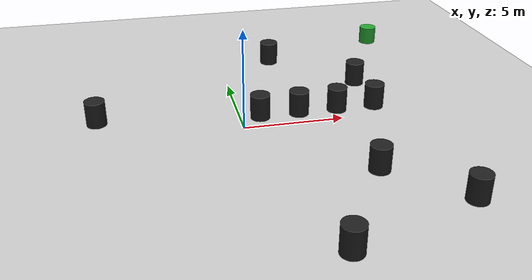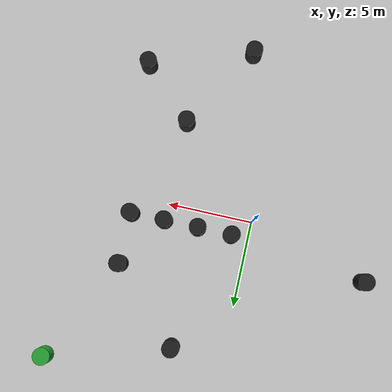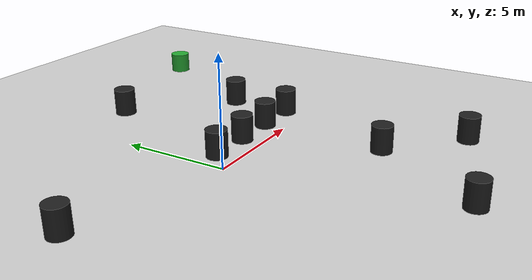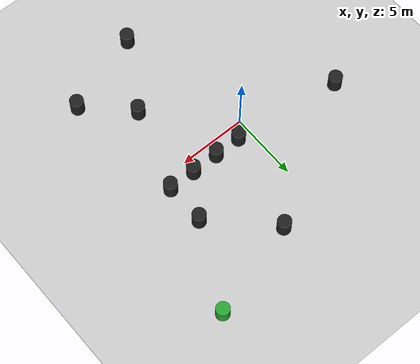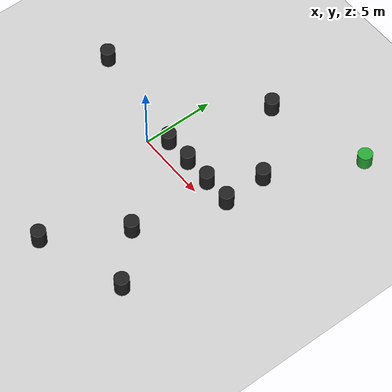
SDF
<?xml version="1.0" ?>
<sdf version="1.4">
  <world name="default">
    <!-- A global light source -->
    <include>
      <uri>model://sun</uri>
    </include>
    <!-- A ground plane -->
    <include>
      <uri>model://ground_plane</uri>
    </include>
    <!-- Own physics settings to speed up simulation -->
    <physics type='ode'>
      <max_step_size>0.01</max_step_size>
      <gravity>0 0 -9.8</gravity>
    </physics>

  		<model name='obs0'>
			<pose>1 1 0.5 0 -0 0</pose>
			<link name='link'>
				<inertial>
					<mass>1.0</mass>
				</inertial>

				<collision name='collision'>
					<geometry>
						<cylinder>
							<radius>0.5</radius>
							<length>1.5</length>
            			</cylinder>
					</geometry>
				</collision>

				<visual name='visual'>
					<geometry>
						<cylinder>
							<radius>0.5</radius>
							<length>1.5</length>
            			</cylinder>
					</geometry>
					<material>
						<script>
							<uri>file://media/materials/scripts/gazebo.material</uri>
							<name>Gazebo/Black</name>
						</script>
					</material>
				</visual>

				<velocity_decay>
					<linear>0</linear>
					<angular>0</angular>
				</velocity_decay>

				<self_collide>0</self_collide>
				<kinematic>0</kinematic>
				<gravity>1</gravity>
			</link>
			<static>0</static>
		</model>

        <model name='obs1'>
			<pose>3 1 0.5 0 -0 0</pose>
			<link name='link'>
				<inertial>
					<mass>10.0</mass>
				</inertial>
				<collision name='collision'>
					<geometry>
						<cylinder>
							<radius>0.5</radius>
							<length>1.5</length>
            			</cylinder>
					</geometry>
				</collision>
				<visual name='visual'>
					<geometry>
						<cylinder>
							<radius>0.5</radius>
							<length>1.5</length>
            			</cylinder>
					</geometry>
					<material>
						<script>
							<uri>file://media/materials/scripts/gazebo.material</uri>
							<name>Gazebo/Black</name>
						</script>
					</material>
				</visual>
				<velocity_decay>
					<linear>0</linear>
					<angular>0</angular>
				</velocity_decay>
				<self_collide>0</self_collide>
				<kinematic>0</kinematic>
				<gravity>1</gravity>
			</link>
			<static>0</static>
		</model>

        <model name='obs2'>
			<pose>5 1 0.5 0 -0 0</pose>
			<link name='link'>
				<inertial>
					<mass>100.0</mass>
				</inertial>
				<collision name='collision'>
					<geometry>
						<cylinder>
							<radius>0.5</radius>
							<length>1.5</length>
            			</cylinder>
					</geometry>
				</collision>
				<visual name='visual'>
					<geometry>
						<cylinder>
							<radius>0.5</radius>
							<length>1.5</length>
            			</cylinder>
					</geometry>
					<material>
						<script>
							<uri>file://media/materials/scripts/gazebo.material</uri>
							<name>Gazebo/Black</name>
						</script>
					</material>
				</visual>
				<velocity_decay>
					<linear>0</linear>
					<angular>0</angular>
				</velocity_decay>
				<self_collide>0</self_collide>
				<kinematic>0</kinematic>
				<gravity>1</gravity>
			</link>
			<static>0</static>
		</model>

        <model name='obs3'>
			<pose>7 1 0.5 0 -0 0</pose>
			<link name='link'>
				<inertial>
					<mass>1000.0</mass>
				</inertial>
				<collision name='collision'>
					<geometry>
						<cylinder>
							<radius>0.5</radius>
							<length>1.5</length>
            			</cylinder>
					</geometry>
				</collision>
				<visual name='visual'>
					<geometry>
						<cylinder>
							<radius>0.5</radius>
							<length>1.5</length>
            			</cylinder>
					</geometry>
					<material>
						<script>
							<uri>file://media/materials/scripts/gazebo.material</uri>
							<name>Gazebo/Black</name>
						</script>
					</material>
				</visual>
				<velocity_decay>
					<linear>0</linear>
					<angular>0</angular>
				</velocity_decay>
				<self_collide>0</self_collide>
				<kinematic>0</kinematic>
				<gravity>1</gravity>
			</link>
			<static>0</static>
		</model>

        <model name='obs4'>
			<pose>7 4 0.5 0 -0 0</pose>
			<link name='link'>
				<inertial>
					<mass>1.0</mass>
				</inertial>
				<collision name='collision'>
					<geometry>
						<cylinder>
							<radius>0.5</radius>
							<length>1.5</length>
            			</cylinder>
					</geometry>
				</collision>
				<visual name='visual'>
					<geometry>
						<cylinder>
							<radius>0.5</radius>
							<length>1.5</length>
            			</cylinder>
					</geometry>
					<material>
						<script>
							<uri>file://media/materials/scripts/gazebo.material</uri>
							<name>Gazebo/Black</name>
						</script>
					</material>
				</visual>
				<velocity_decay>
					<linear>0</linear>
					<angular>0</angular>
				</velocity_decay>
				<self_collide>0</self_collide>
				<kinematic>0</kinematic>
				<gravity>1</gravity>
			</link>
			<static>0</static>
		</model>

        <model name='obs5'>
			<pose>-7 2 0.5 0 -0 0</pose>
			<link name='link'>
				<inertial>
					<mass>1.0</mass>
				</inertial>
				<collision name='collision'>
					<geometry>
						<cylinder>
							<radius>0.5</radius>
							<length>1.5</length>
            			</cylinder>
					</geometry>
				</collision>
				<visual name='visual'>
					<geometry>
						<cylinder>
							<radius>0.5</radius>
							<length>1.5</length>
            			</cylinder>
					</geometry>
					<material>
						<script>
							<uri>file://media/materials/scripts/gazebo.material</uri>
							<name>Gazebo/Black</name>
						</script>
					</material>
				</visual>
				<velocity_decay>
					<linear>0</linear>
					<angular>0</angular>
				</velocity_decay>
				<self_collide>0</self_collide>
				<kinematic>0</kinematic>
				<gravity>1</gravity>
			</link>
			<static>0</static>
		</model>

        <model name='obs6'>
			<pose>8 -8 0.5 0 -0 0</pose>
			<link name='link'>
				<inertial>
					<mass>1.0</mass>
				</inertial>
				<collision name='collision'>
					<geometry>
						<cylinder>
							<radius>0.5</radius>
							<length>1.5</length>
            			</cylinder>
					</geometry>
				</collision>
				<visual name='visual'>
					<geometry>
						<cylinder>
							<radius>0.5</radius>
							<length>1.5</length>
            			</cylinder>
					</geometry>
					<material>
						<script>
							<uri>file://media/materials/scripts/gazebo.material</uri>
							<name>Gazebo/Black</name>
						</script>
					</material>
				</visual>
				<velocity_decay>
					<linear>0</linear>
					<angular>0</angular>
				</velocity_decay>
				<self_collide>0</self_collide>
				<kinematic>0</kinematic>
				<gravity>1</gravity>
			</link>
			<static>0</static>
		</model>

        <model name='obs7'>
			<pose>5 -5 0.5 0 -0 0</pose>
			<link name='link'>
				<inertial>
					<mass>1.0</mass>
				</inertial>
				<collision name='collision'>
					<geometry>
						<cylinder>
							<radius>0.5</radius>
							<length>1.5</length>
            			</cylinder>
					</geometry>
				</collision>
				<visual name='visual'>
					<geometry>
						<cylinder>
							<radius>0.5</radius>
							<length>1.5</length>
            			</cylinder>
					</geometry>
					<material>
						<script>
							<uri>file://media/materials/scripts/gazebo.material</uri>
							<name>Gazebo/Black</name>
						</script>
					</material>
				</visual>
				<velocity_decay>
					<linear>0</linear>
					<angular>0</angular>
				</velocity_decay>
				<self_collide>0</self_collide>
				<kinematic>0</kinematic>
				<gravity>1</gravity>
			</link>
			<static>0</static>
		</model>

        <model name='obs8'>
			<pose>2 -10 0.5 0 -0 0</pose>
			<link name='link'>
				<inertial>
					<mass>1.0</mass>
				</inertial>
				<collision name='collision'>
					<geometry>
						<cylinder>
							<radius>0.5</radius>
							<length>1.5</length>
            			</cylinder>
					</geometry>
				</collision>
				<visual name='visual'>
					<geometry>
						<cylinder>
							<radius>0.5</radius>
							<length>1.5</length>
            			</cylinder>
					</geometry>
					<material>
						<script>
							<uri>file://media/materials/scripts/gazebo.material</uri>
							<name>Gazebo/Black</name>
						</script>
					</material>
				</visual>
				<velocity_decay>
					<linear>0</linear>
					<angular>0</angular>
				</velocity_decay>
				<self_collide>0</self_collide>
				<kinematic>0</kinematic>
				<gravity>1</gravity>
			</link>
			<static>0</static>
		</model>

    	<model name='obs9'>
			<pose>3 8 0.5 0 -0 0</pose>
			<link name='link'>
				<inertial>
					<mass>1.0</mass>
				</inertial>
				<collision name='collision'>
					<geometry>
						<cylinder>
							<radius>0.5</radius>
							<length>1.5</length>
            			</cylinder>
					</geometry>
				</collision>
				<visual name='visual'>
					<geometry>
						<cylinder>
							<radius>0.5</radius>
							<length>1.5</length>
            			</cylinder>
					</geometry>
					<material>
						<script>
							<uri>file://media/materials/scripts/gazebo.material</uri>
							<name>Gazebo/Black</name>
						</script>
					</material>
				</visual>
				<velocity_decay>
					<linear>0</linear>
					<angular>0</angular>
				</velocity_decay>
				<self_collide>0</self_collide>
				<kinematic>0</kinematic>
				<gravity>1</gravity>
			</link>
			<static>0</static>
		</model>

		<model name='agent_point_goal'>
			<pose>10 10 0.5 0 0 0</pose>
			<link name='link'>
				<inertial>
					<mass>1</mass>
				</inertial>
				<visual name='visual'>
					<geometry>
						<cylinder>
								<radius>0.5</radius>
								<length>1.0</length>
						</cylinder>
					</geometry>
					<material>
						<script>
							<uri>file://media/materials/scripts/gazebo.material</uri>
							<name>Gazebo/Green</name>
						</script>
					</material>
				</visual>
				<velocity_decay>
					<linear>0</linear>
					<angular>0</angular>
				</velocity_decay>
				<self_collide>0</self_collide>
				<kinematic>0</kinematic>
				<gravity>0</gravity>
			</link>
		</model>
  </world>
</sdf>
